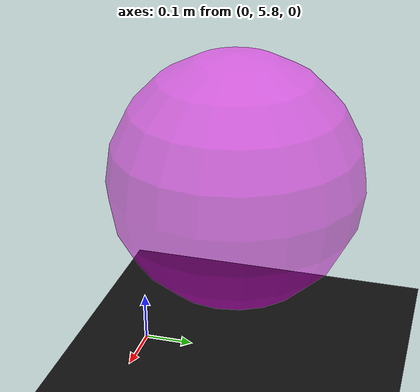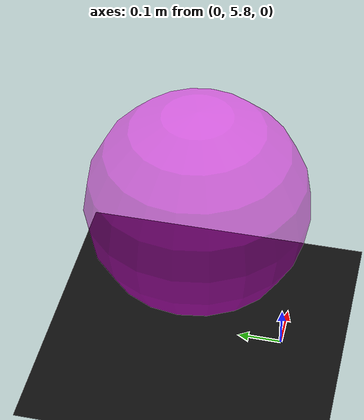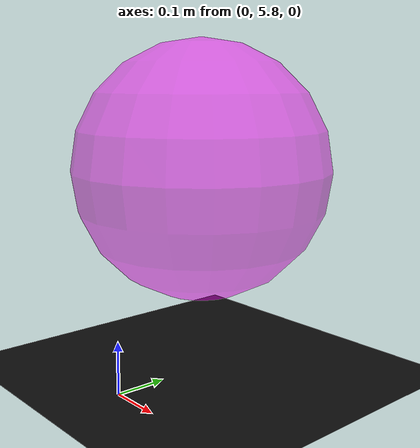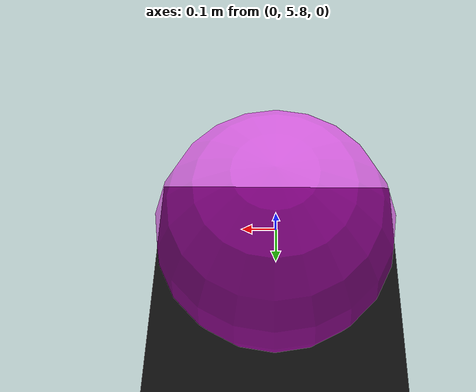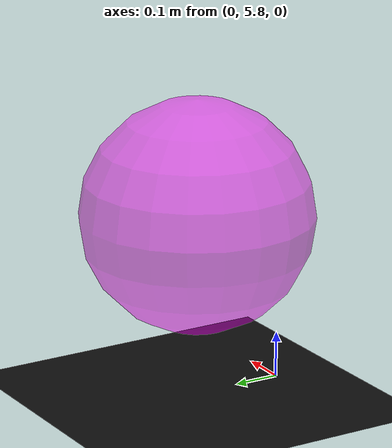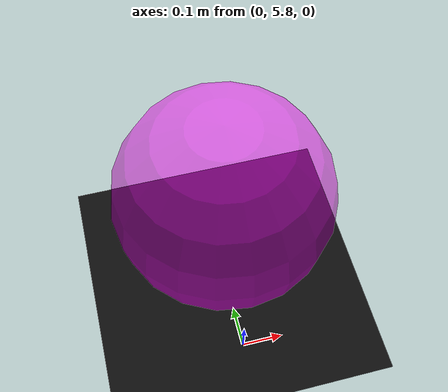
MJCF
<mujoco model="haze transparent probe">
  <statistic center="0 3 0.5" extent="1"/>
  <visual>
    <map znear="0.01" zfar="10" haze="0.3"/>
    <rgba haze="0.15 0.25 0.35 1"/>
  </visual>
  <asset>
    <texture type="skybox" builtin="flat" rgb1="0 0 0" width="32" height="256"/>
    <material name="probe" rgba="1 0 1 0.5" emission="1"/>
  </asset>
  <worldbody>
    <geom name="floor" type="plane" size="0 0 0.05" rgba="0.05 0.05 0.05 1"/>
    <geom name="behind_haze" type="sphere" pos="0 6 0.4" size="0.25" material="probe"/>
    <camera name="probe" pos="0 0 1" xyaxes="1 0 0 0 0.1 0.995" fovy="45"/>
  </worldbody>
</mujoco>
